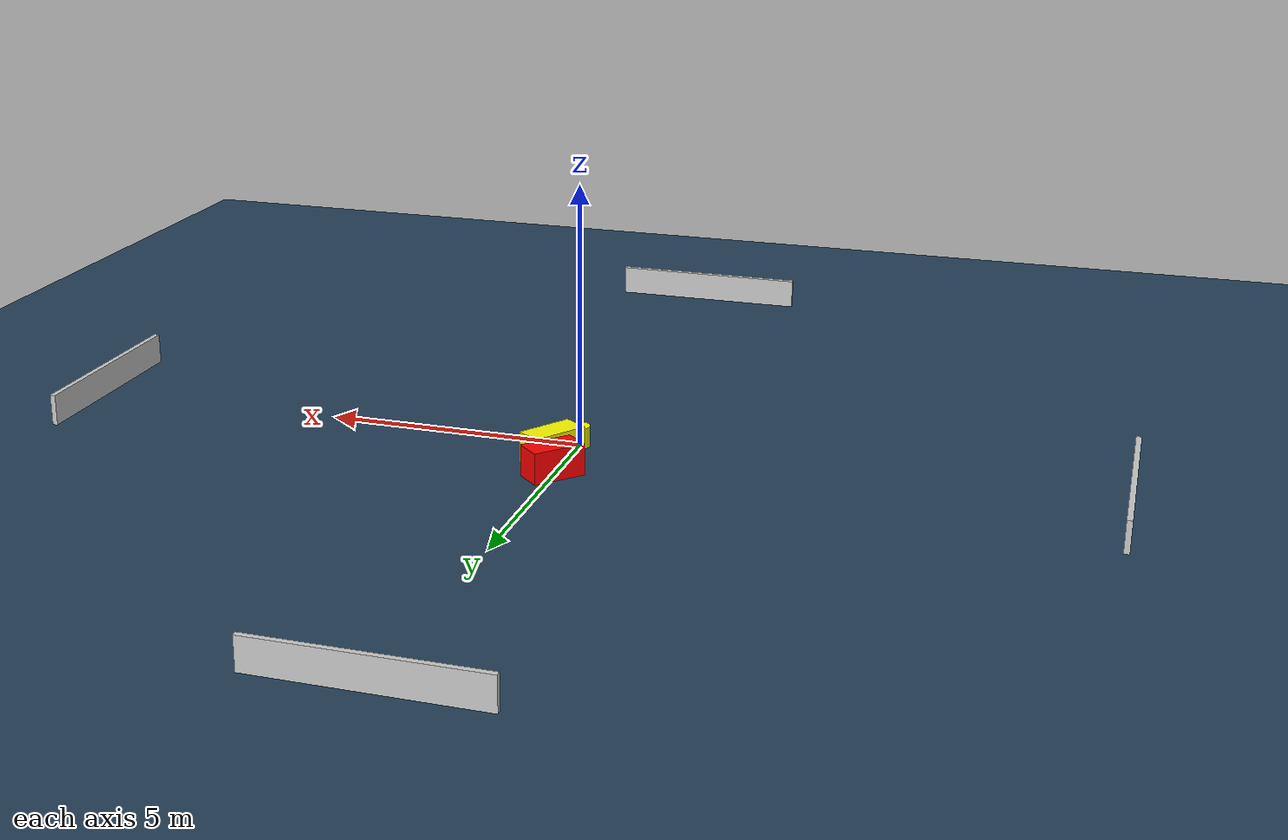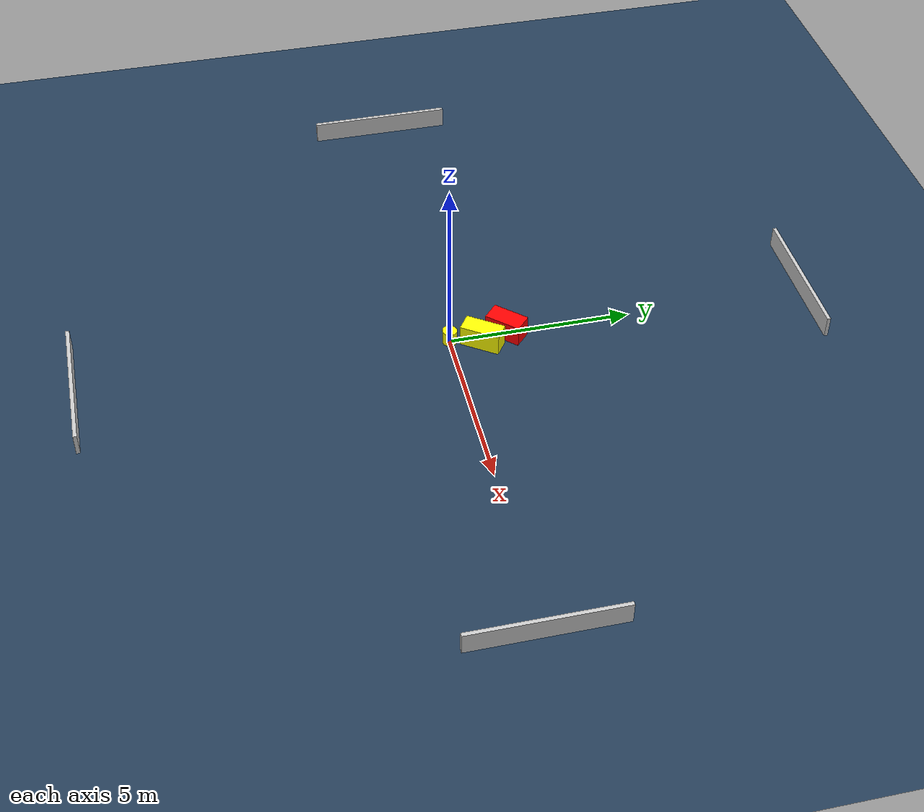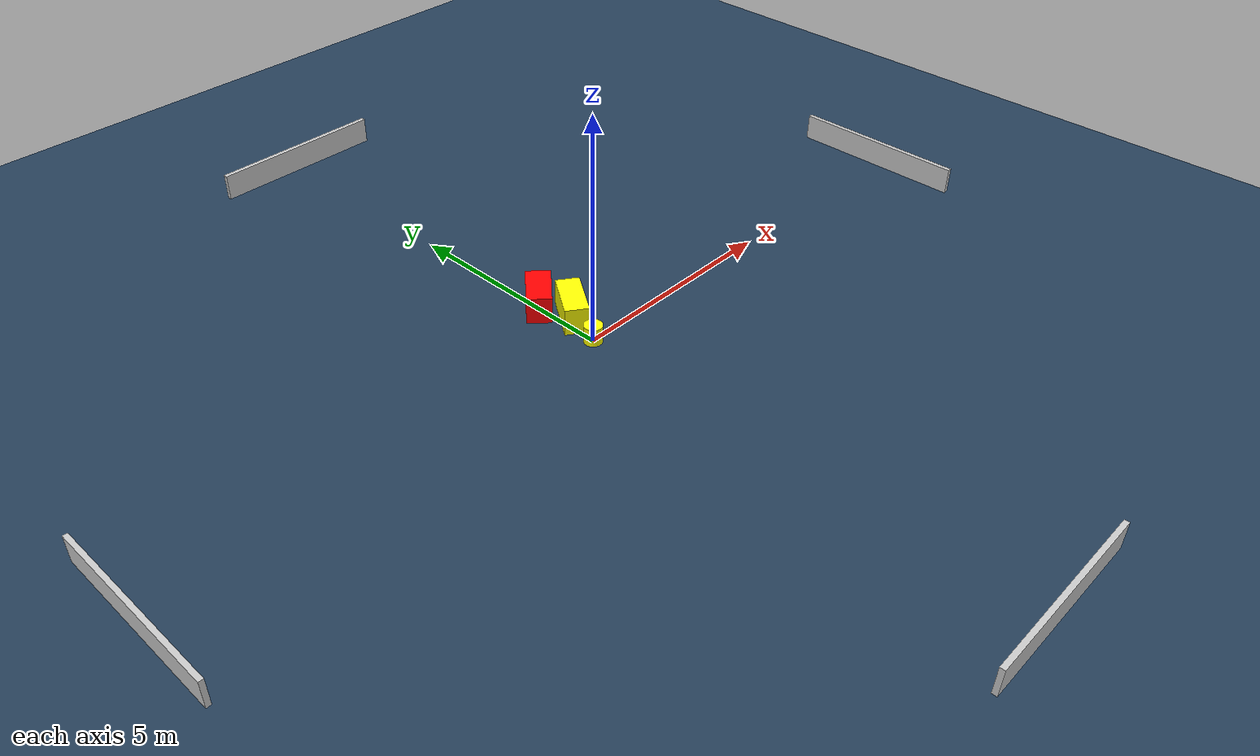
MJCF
<?xml version="1.0" ?>
<mujoco model="generated_environment">
  <option timestep="0.01" integrator="RK4" cone="elliptic"/>
  <default>
    <geom density="1"/>
  </default>
  <asset>
    <texture builtin="gradient" height="3072" name="skybox" rgb1="0.3 0.5 0.7" rgb2="0 0 0" type="skybox" width="512"/>
    <texture builtin="checker" height="300" name="groundplane" rgb1="0.2 0.3 0.4" rgb2="0.1 0.2 0.3" type="2d" width="300"/>
    <material name="groundplane" reflectance="0.2" texrepeat="5 5" texture="groundplane"/>
  </asset>
  <worldbody>
    <light dir="0 0 -1" directional="true" pos="0 0 1.5"/>
    <geom condim="3" friction="0.5 0.005 0.001" material="groundplane" name="floor" pos="0 0 0" size="0 0 0.05" type="plane"/>
    <body name="walls">
      <geom name="wall_1" condim="4" pos="-10.0 0.0 0.3" rgba="0.800000011920929 0.800000011920929 0.800000011920929 1.0" size="0.05 2.0 0.3" type="box"/>
      <geom name="wall_2" condim="4" pos="10.0 0.0 0.3" rgba="0.800000011920929 0.800000011920929 0.800000011920929 1.0" size="0.05 2.0 0.3" type="box"/>
      <geom name="wall_3" condim="4" pos="0.0 -10.0 0.3" rgba="0.800000011920929 0.800000011920929 0.800000011920929 1.0" size="2.0 0.05 0.3" type="box"/>
      <geom name="wall_4" condim="4" pos="0.0 10.0 0.3" rgba="0.800000011920929 0.800000011920929 0.800000011920929 1.0" size="2.0 0.05 0.3" type="box"/>
    </body>
    <body name="robot">
      <joint name="joint_x" type="slide" pos="0 0 0" axis="1 0 0"/>
      <joint name="joint_y" type="slide" pos="0 0 0" axis="0 1 0"/>
      <geom name="robot" type="cylinder" pos="0.0 0.0 0.2" size="0.2 0.2 0.0" mass="5.0" friction="1.0 0.005 0.0001" condim="4" rgba="1.0 1.0 0.0 1.0"/>
    </body>
    <body name="obstacle_1_movable">
      <geom name="obstacle_1_movable" condim="4" pos="0.25890758385676815 0.8451066374033499 0.3" euler="0 0 235.3202142830749" friction="0.0 0.005 0.001" rgba="1.0 1.0 0.0 1.0" size="0.5515660680483134 0.25560811894731794 0.3" type="box" mass="0.1"/>
      <joint type="free"/>
    </body>
    <body name="obstacle_2_static">
      <geom name="obstacle_2_static" condim="4" pos="0.015361806042153408 1.5690156508395325 0.3" euler="0 0 137.07552937349197" friction="0.0 0.005 0.001" rgba="1.0 0.0 0.0 1.0" size="0.26799728329696937 0.509542062045274 0.3" type="box"/>
    </body>
  </worldbody>
  <actuator>
    <motor name="actuator_x" joint="joint_x" gear="1" ctrlrange="-1 1"/>
    <motor name="actuator_y" joint="joint_y" gear="1" ctrlrange="-1 1"/>
  </actuator>
</mujoco>
